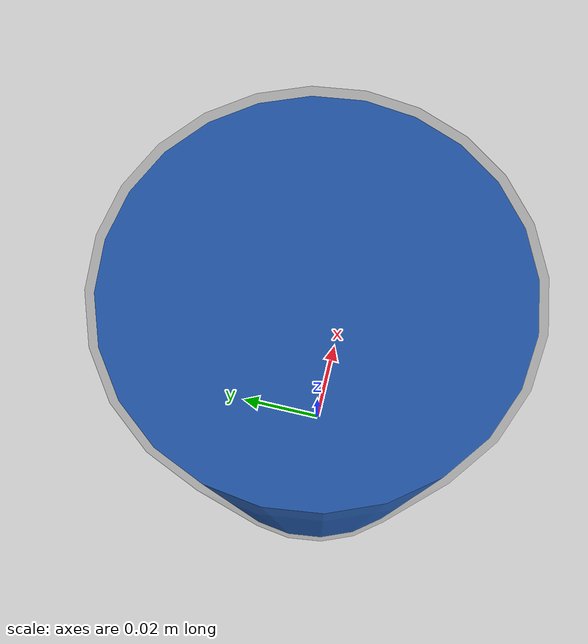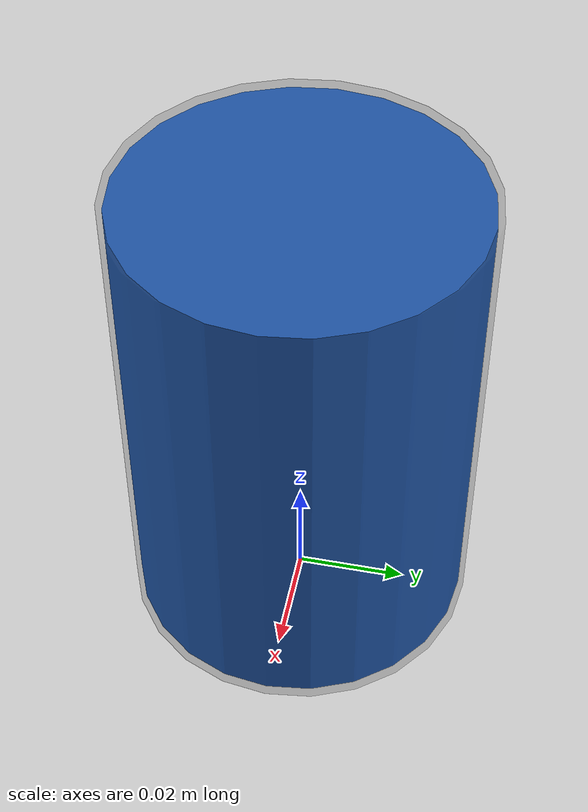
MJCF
<mujoco model="stable_can">
  <compiler autolimits="true"/>
  <default>
    <geom friction="0.9 0.01 0.001" condim="3" solref="0.008 1" solimp="0.90 0.95 0.001" margin="0.001"/>
  </default>
  <worldbody>
    <body name="stable_can" pos="0 0 0.045">
      <freejoint/>
      <inertial pos="0 0 0" mass="0.10" diaginertia="0.000061 0.000061 0.000030"/>
      <geom name="stable_can_collision" type="cylinder" size="0.032 0.045" rgba="0.25 0.25 0.25 0.25"/>
      <geom name="stable_can_visual" type="cylinder" size="0.031 0.044" contype="0" conaffinity="0" group="1" rgba="0.10 0.38 0.80 1"/>
    </body>
  </worldbody>
</mujoco>
